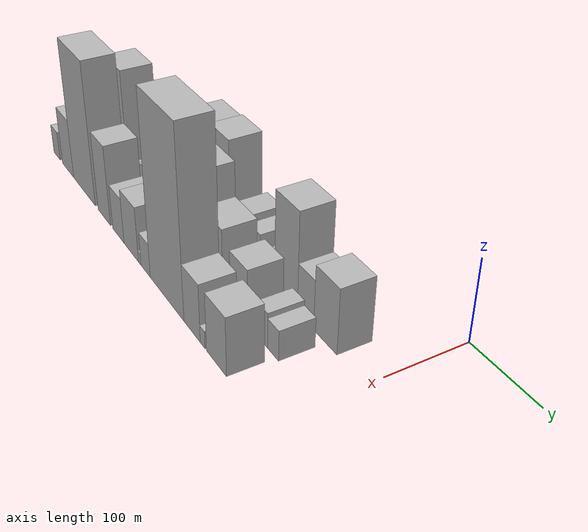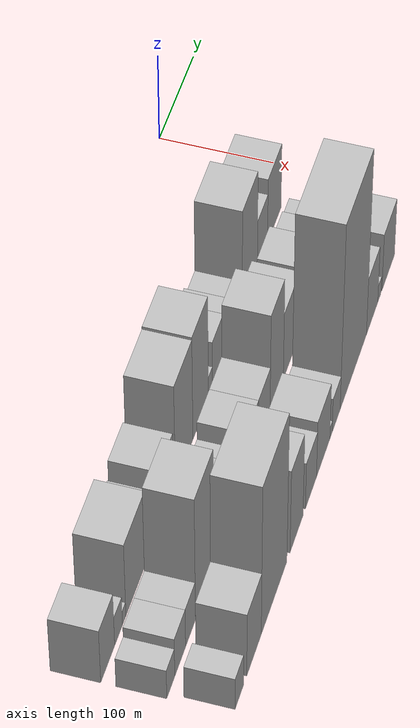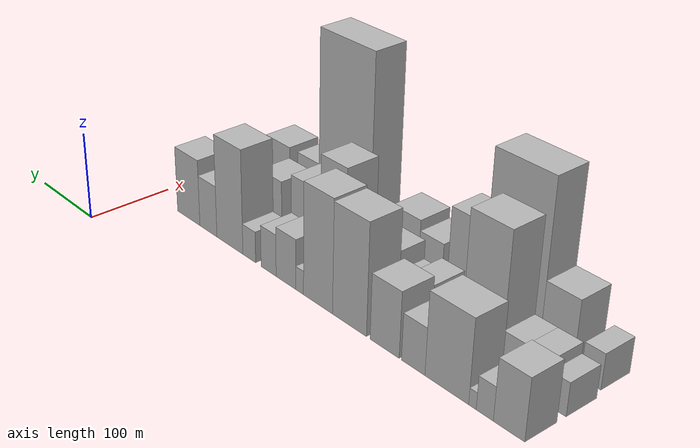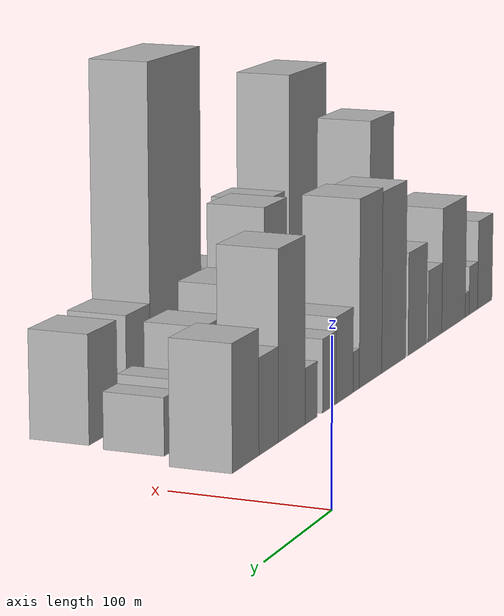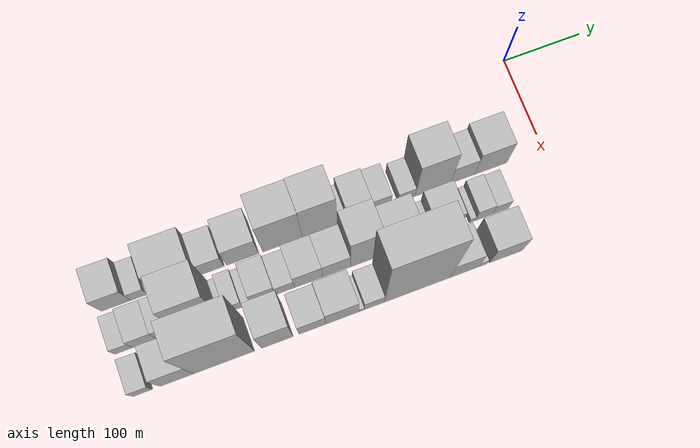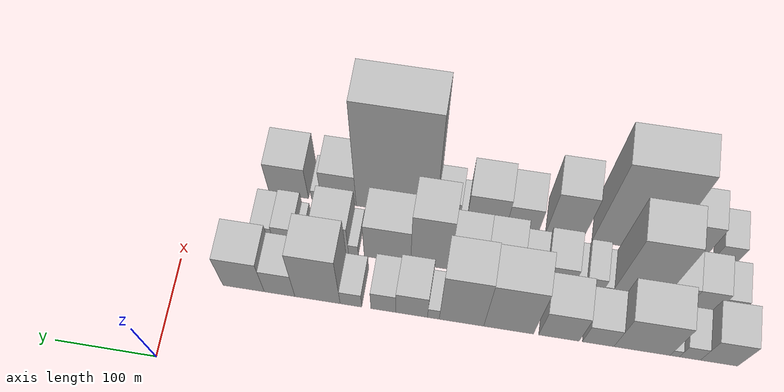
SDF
<sdf version="1.6">
 <world name="default">
  <model name="building_1">
   <static>1</static>
   <pose>100.0000 -530.3338 0 0.000000 0.000000 0.000000</pose>
   <link name="link">
    <pose>0 0 33.00 0 0 0</pose>
    <collision name="collision"><geometry><box><size>40.0000 35.3325 66.0000</size></box></geometry></collision>
    <visual name="visual">
     <cast_shadows>0</cast_shadows>
     <geometry><box><size>40.0000 35.3325 66.0000</size></box></geometry>
     <material>
      <script>
       <uri>model://HANNAS_wall/materials/scripts</uri>
       <uri>model://HANNAS_wall/materials/textures</uri>
       <name>vrc/HANNAS_wall</name>
      </script>
     </material>
    </visual>
   </link>
  </model>
  <model name="building_2">
   <static>1</static>
   <pose>100.0000 -502.6981 0 0.000000 0.000000 0.000000</pose>
   <link name="link">
    <pose>0 0 18.00 0 0 0</pose>
    <collision name="collision"><geometry><box><size>40.0000 19.9389 36.0000</size></box></geometry></collision>
    <visual name="visual">
     <cast_shadows>0</cast_shadows>
     <geometry><box><size>40.0000 19.9389 36.0000</size></box></geometry>
     <material>
      <script>
       <uri>model://HANNAS_wall/materials/scripts</uri>
       <uri>model://HANNAS_wall/materials/textures</uri>
       <name>vrc/HANNAS_wall</name>
      </script>
     </material>
    </visual>
   </link>
  </model>
  <model name="building_3">
   <static>1</static>
   <pose>100.0000 -488.2948 0 0.000000 0.000000 0.000000</pose>
   <link name="link">
    <pose>0 0 9.00 0 0 0</pose>
    <collision name="collision"><geometry><box><size>40.0000 8.8676 18.0000</size></box></geometry></collision>
    <visual name="visual">
     <cast_shadows>0</cast_shadows>
     <geometry><box><size>40.0000 8.8676 18.0000</size></box></geometry>
     <material>
      <script>
       <uri>model://HANNAS_wall/materials/scripts</uri>
       <uri>model://HANNAS_wall/materials/textures</uri>
       <name>vrc/HANNAS_wall</name>
      </script>
     </material>
    </visual>
   </link>
  </model>
  <model name="building_4">
   <static>1</static>
   <pose>100.0000 -457.0138 0 0.000000 0.000000 0.000000</pose>
   <link name="link">
    <pose>0 0 45.00 0 0 0</pose>
    <collision name="collision"><geometry><box><size>40.0000 53.6944 90.0000</size></box></geometry></collision>
    <visual name="visual">
     <cast_shadows>0</cast_shadows>
     <geometry><box><size>40.0000 53.6944 90.0000</size></box></geometry>
     <material>
      <script>
       <uri>model://HANNAS_wall/materials/scripts</uri>
       <uri>model://HANNAS_wall/materials/textures</uri>
       <name>vrc/HANNAS_wall</name>
      </script>
     </material>
    </visual>
   </link>
  </model>
  <model name="building_5">
   <static>1</static>
   <pose>100.0000 -415.0397 0 0.000000 0.000000 0.000000</pose>
   <link name="link">
    <pose>0 0 25.50 0 0 0</pose>
    <collision name="collision"><geometry><box><size>40.0000 30.2539 51.0000</size></box></geometry></collision>
    <visual name="visual">
     <cast_shadows>0</cast_shadows>
     <geometry><box><size>40.0000 30.2539 51.0000</size></box></geometry>
     <material>
      <script>
       <uri>model://HANNAS_wall/materials/scripts</uri>
       <uri>model://HANNAS_wall/materials/textures</uri>
       <name>vrc/HANNAS_wall</name>
      </script>
     </material>
    </visual>
   </link>
  </model>
  <model name="building_6">
   <static>1</static>
   <pose>100.0000 -377.3122 0 0.000000 0.000000 0.000000</pose>
   <link name="link">
    <pose>0 0 36.00 0 0 0</pose>
    <collision name="collision"><geometry><box><size>40.0000 39.2010 72.0000</size></box></geometry></collision>
    <visual name="visual">
     <cast_shadows>0</cast_shadows>
     <geometry><box><size>40.0000 39.2010 72.0000</size></box></geometry>
     <material>
      <script>
       <uri>model://HANNAS_wall/materials/scripts</uri>
       <uri>model://HANNAS_wall/materials/textures</uri>
       <name>vrc/HANNAS_wall</name>
      </script>
     </material>
    </visual>
   </link>
  </model>
  <model name="building_7">
   <static>1</static>
   <pose>100.0000 -328.5585 0 0.000000 0.000000 0.000000</pose>
   <link name="link">
    <pose>0 0 61.50 0 0 0</pose>
    <collision name="collision"><geometry><box><size>40.0000 48.3065 123.0000</size></box></geometry></collision>
    <visual name="visual">
     <cast_shadows>0</cast_shadows>
     <geometry><box><size>40.0000 48.3065 123.0000</size></box></geometry>
     <material>
      <script>
       <uri>model://HANNAS_wall/materials/scripts</uri>
       <uri>model://HANNAS_wall/materials/textures</uri>
       <name>vrc/HANNAS_wall</name>
      </script>
     </material>
    </visual>
   </link>
  </model>
  <model name="building_8">
   <static>1</static>
   <pose>100.0000 -282.7142 0 0.000000 0.000000 0.000000</pose>
   <link name="link">
    <pose>0 0 63.00 0 0 0</pose>
    <collision name="collision"><geometry><box><size>40.0000 43.3821 126.0000</size></box></geometry></collision>
    <visual name="visual">
     <cast_shadows>0</cast_shadows>
     <geometry><box><size>40.0000 43.3821 126.0000</size></box></geometry>
     <material>
      <script>
       <uri>model://HANNAS_wall/materials/scripts</uri>
       <uri>model://HANNAS_wall/materials/textures</uri>
       <name>vrc/HANNAS_wall</name>
      </script>
     </material>
    </visual>
   </link>
  </model>
  <model name="building_9">
   <static>1</static>
   <pose>100.0000 -255.2567 0 0.000000 0.000000 0.000000</pose>
   <link name="link">
    <pose>0 0 13.50 0 0 0</pose>
    <collision name="collision"><geometry><box><size>40.0000 11.5329 27.0000</size></box></geometry></collision>
    <visual name="visual">
     <cast_shadows>0</cast_shadows>
     <geometry><box><size>40.0000 11.5329 27.0000</size></box></geometry>
     <material>
      <script>
       <uri>model://HANNAS_wall/materials/scripts</uri>
       <uri>model://HANNAS_wall/materials/textures</uri>
       <name>vrc/HANNAS_wall</name>
      </script>
     </material>
    </visual>
   </link>
  </model>
  <model name="building_10">
   <static>1</static>
   <pose>100.0000 -233.8581 0 0.000000 0.000000 0.000000</pose>
   <link name="link">
    <pose>0 0 28.50 0 0 0</pose>
    <collision name="collision"><geometry><box><size>40.0000 31.2644 57.0000</size></box></geometry></collision>
    <visual name="visual">
     <cast_shadows>0</cast_shadows>
     <geometry><box><size>40.0000 31.2644 57.0000</size></box></geometry>
     <material>
      <script>
       <uri>model://HANNAS_wall/materials/scripts</uri>
       <uri>model://HANNAS_wall/materials/textures</uri>
       <name>vrc/HANNAS_wall</name>
      </script>
     </material>
    </visual>
   </link>
  </model>
  <model name="building_11">
   <static>1</static>
   <pose>100.0000 -206.1032 0 0.000000 0.000000 0.000000</pose>
   <link name="link">
    <pose>0 0 24.00 0 0 0</pose>
    <collision name="collision"><geometry><box><size>40.0000 24.2454 48.0000</size></box></geometry></collision>
    <visual name="visual">
     <cast_shadows>0</cast_shadows>
     <geometry><box><size>40.0000 24.2454 48.0000</size></box></geometry>
     <material>
      <script>
       <uri>model://HANNAS_wall/materials/scripts</uri>
       <uri>model://HANNAS_wall/materials/textures</uri>
       <name>vrc/HANNAS_wall</name>
      </script>
     </material>
    </visual>
   </link>
  </model>
  <model name="building_12">
   <static>1</static>
   <pose>100.0000 -174.3278 0 0.000000 0.000000 0.000000</pose>
   <link name="link">
    <pose>0 0 18.00 0 0 0</pose>
    <collision name="collision"><geometry><box><size>40.0000 21.3055 36.0000</size></box></geometry></collision>
    <visual name="visual">
     <cast_shadows>0</cast_shadows>
     <geometry><box><size>40.0000 21.3055 36.0000</size></box></geometry>
     <material>
      <script>
       <uri>model://HANNAS_wall/materials/scripts</uri>
       <uri>model://HANNAS_wall/materials/textures</uri>
       <name>vrc/HANNAS_wall</name>
      </script>
     </material>
    </visual>
   </link>
  </model>
  <model name="building_13">
   <static>1</static>
   <pose>100.0000 -141.2333 0 0.000000 0.000000 0.000000</pose>
   <link name="link">
    <pose>0 0 60.00 0 0 0</pose>
    <collision name="collision"><geometry><box><size>40.0000 44.8834 120.0000</size></box></geometry></collision>
    <visual name="visual">
     <cast_shadows>0</cast_shadows>
     <geometry><box><size>40.0000 44.8834 120.0000</size></box></geometry>
     <material>
      <script>
       <uri>model://HANNAS_wall/materials/scripts</uri>
       <uri>model://HANNAS_wall/materials/textures</uri>
       <name>vrc/HANNAS_wall</name>
      </script>
     </material>
    </visual>
   </link>
  </model>
  <model name="building_14">
   <static>1</static>
   <pose>100.0000 -103.5274 0 0.000000 0.000000 0.000000</pose>
   <link name="link">
    <pose>0 0 30.00 0 0 0</pose>
    <collision name="collision"><geometry><box><size>40.0000 30.5285 60.0000</size></box></geometry></collision>
    <visual name="visual">
     <cast_shadows>0</cast_shadows>
     <geometry><box><size>40.0000 30.5285 60.0000</size></box></geometry>
     <material>
      <script>
       <uri>model://HANNAS_wall/materials/scripts</uri>
       <uri>model://HANNAS_wall/materials/textures</uri>
       <name>vrc/HANNAS_wall</name>
      </script>
     </material>
    </visual>
   </link>
  </model>
  <model name="building_15">
   <static>1</static>
   <pose>100.0000 -67.6410 0 0.000000 0.000000 0.000000</pose>
   <link name="link">
    <pose>0 0 39.00 0 0 0</pose>
    <collision name="collision"><geometry><box><size>40.0000 41.2443 78.0000</size></box></geometry></collision>
    <visual name="visual">
     <cast_shadows>0</cast_shadows>
     <geometry><box><size>40.0000 41.2443 78.0000</size></box></geometry>
     <material>
      <script>
       <uri>model://HANNAS_wall/materials/scripts</uri>
       <uri>model://HANNAS_wall/materials/textures</uri>
       <name>vrc/HANNAS_wall</name>
      </script>
     </material>
    </visual>
   </link>
  </model>
  <model name="building_31">
   <static>1</static>
   <pose>152.0000 -537.5515 0 0.000000 0.000000 0.000000</pose>
   <link name="link">
    <pose>0 0 18.00 0 0 0</pose>
    <collision name="collision"><geometry><box><size>40.0000 20.8969 36.0000</size></box></geometry></collision>
    <visual name="visual">
     <cast_shadows>0</cast_shadows>
     <geometry><box><size>40.0000 20.8969 36.0000</size></box></geometry>
     <material>
      <script>
       <uri>model://HANNAS_wall/materials/scripts</uri>
       <uri>model://HANNAS_wall/materials/textures</uri>
       <name>vrc/HANNAS_wall</name>
      </script>
     </material>
    </visual>
   </link>
  </model>
  <model name="building_32">
   <static>1</static>
   <pose>152.0000 -512.8496 0 0.000000 0.000000 0.000000</pose>
   <link name="link">
    <pose>0 0 24.00 0 0 0</pose>
    <collision name="collision"><geometry><box><size>40.0000 28.5069 48.0000</size></box></geometry></collision>
    <visual name="visual">
     <cast_shadows>0</cast_shadows>
     <geometry><box><size>40.0000 28.5069 48.0000</size></box></geometry>
     <material>
      <script>
       <uri>model://HANNAS_wall/materials/scripts</uri>
       <uri>model://HANNAS_wall/materials/textures</uri>
       <name>vrc/HANNAS_wall</name>
      </script>
     </material>
    </visual>
   </link>
  </model>
  <model name="building_33">
   <static>1</static>
   <pose>152.0000 -485.3992 0 0.000000 0.000000 0.000000</pose>
   <link name="link">
    <pose>0 0 24.00 0 0 0</pose>
    <collision name="collision"><geometry><box><size>40.0000 26.3939 48.0000</size></box></geometry></collision>
    <visual name="visual">
     <cast_shadows>0</cast_shadows>
     <geometry><box><size>40.0000 26.3939 48.0000</size></box></geometry>
     <material>
      <script>
       <uri>model://HANNAS_wall/materials/scripts</uri>
       <uri>model://HANNAS_wall/materials/textures</uri>
       <name>vrc/HANNAS_wall</name>
      </script>
     </material>
    </visual>
   </link>
  </model>
  <model name="building_34">
   <static>1</static>
   <pose>152.0000 -447.6264 0 0.000000 0.000000 0.000000</pose>
   <link name="link">
    <pose>0 0 75.00 0 0 0</pose>
    <collision name="collision"><geometry><box><size>40.0000 49.1517 150.0000</size></box></geometry></collision>
    <visual name="visual">
     <cast_shadows>0</cast_shadows>
     <geometry><box><size>40.0000 49.1517 150.0000</size></box></geometry>
     <material>
      <script>
       <uri>model://HANNAS_wall/materials/scripts</uri>
       <uri>model://HANNAS_wall/materials/textures</uri>
       <name>vrc/HANNAS_wall</name>
      </script>
     </material>
    </visual>
   </link>
  </model>
  <model name="building_35">
   <static>1</static>
   <pose>152.0000 -418.7044 0 0.000000 0.000000 0.000000</pose>
   <link name="link">
    <pose>0 0 9.00 0 0 0</pose>
    <collision name="collision"><geometry><box><size>40.0000 8.6922 18.0000</size></box></geometry></collision>
    <visual name="visual">
     <cast_shadows>0</cast_shadows>
     <geometry><box><size>40.0000 8.6922 18.0000</size></box></geometry>
     <material>
      <script>
       <uri>model://HANNAS_wall/materials/scripts</uri>
       <uri>model://HANNAS_wall/materials/textures</uri>
       <name>vrc/HANNAS_wall</name>
      </script>
     </material>
    </visual>
   </link>
  </model>
  <model name="building_36">
   <static>1</static>
   <pose>152.0000 -404.8493 0 0.000000 0.000000 0.000000</pose>
   <link name="link">
    <pose>0 0 18.00 0 0 0</pose>
    <collision name="collision"><geometry><box><size>40.0000 19.0181 36.0000</size></box></geometry></collision>
    <visual name="visual">
     <cast_shadows>0</cast_shadows>
     <geometry><box><size>40.0000 19.0181 36.0000</size></box></geometry>
     <material>
      <script>
       <uri>model://HANNAS_wall/materials/scripts</uri>
       <uri>model://HANNAS_wall/materials/textures</uri>
       <name>vrc/HANNAS_wall</name>
      </script>
     </material>
    </visual>
   </link>
  </model>
  <model name="building_37">
   <static>1</static>
   <pose>152.0000 -390.2916 0 0.000000 0.000000 0.000000</pose>
   <link name="link">
    <pose>0 0 12.00 0 0 0</pose>
    <collision name="collision"><geometry><box><size>40.0000 10.0972 24.0000</size></box></geometry></collision>
    <visual name="visual">
     <cast_shadows>0</cast_shadows>
     <geometry><box><size>40.0000 10.0972 24.0000</size></box></geometry>
     <material>
      <script>
       <uri>model://HANNAS_wall/materials/scripts</uri>
       <uri>model://HANNAS_wall/materials/textures</uri>
       <name>vrc/HANNAS_wall</name>
      </script>
     </material>
    </visual>
   </link>
  </model>
  <model name="building_38">
   <static>1</static>
   <pose>152.0000 -370.4043 0 0.000000 0.000000 0.000000</pose>
   <link name="link">
    <pose>0 0 25.50 0 0 0</pose>
    <collision name="collision"><geometry><box><size>40.0000 29.6774 51.0000</size></box></geometry></collision>
    <visual name="visual">
     <cast_shadows>0</cast_shadows>
     <geometry><box><size>40.0000 29.6774 51.0000</size></box></geometry>
     <material>
      <script>
       <uri>model://HANNAS_wall/materials/scripts</uri>
       <uri>model://HANNAS_wall/materials/textures</uri>
       <name>vrc/HANNAS_wall</name>
      </script>
     </material>
    </visual>
   </link>
  </model>
  <model name="building_39">
   <static>1</static>
   <pose>152.0000 -344.0261 0 0.000000 0.000000 0.000000</pose>
   <link name="link">
    <pose>0 0 19.50 0 0 0</pose>
    <collision name="collision"><geometry><box><size>40.0000 23.0791 39.0000</size></box></geometry></collision>
    <visual name="visual">
     <cast_shadows>0</cast_shadows>
     <geometry><box><size>40.0000 23.0791 39.0000</size></box></geometry>
     <material>
      <script>
       <uri>model://HANNAS_wall/materials/scripts</uri>
       <uri>model://HANNAS_wall/materials/textures</uri>
       <name>vrc/HANNAS_wall</name>
      </script>
     </material>
    </visual>
   </link>
  </model>
  <model name="building_40">
   <static>1</static>
   <pose>152.0000 -315.2339 0 0.000000 0.000000 0.000000</pose>
   <link name="link">
    <pose>0 0 30.00 0 0 0</pose>
    <collision name="collision"><geometry><box><size>40.0000 34.5054 60.0000</size></box></geometry></collision>
    <visual name="visual">
     <cast_shadows>0</cast_shadows>
     <geometry><box><size>40.0000 34.5054 60.0000</size></box></geometry>
     <material>
      <script>
       <uri>model://HANNAS_wall/materials/scripts</uri>
       <uri>model://HANNAS_wall/materials/textures</uri>
       <name>vrc/HANNAS_wall</name>
      </script>
     </material>
    </visual>
   </link>
  </model>
  <model name="building_41">
   <static>1</static>
   <pose>152.0000 -280.9853 0 0.000000 0.000000 0.000000</pose>
   <link name="link">
    <pose>0 0 30.00 0 0 0</pose>
    <collision name="collision"><geometry><box><size>40.0000 33.9917 60.0000</size></box></geometry></collision>
    <visual name="visual">
     <cast_shadows>0</cast_shadows>
     <geometry><box><size>40.0000 33.9917 60.0000</size></box></geometry>
     <material>
      <script>
       <uri>model://HANNAS_wall/materials/scripts</uri>
       <uri>model://HANNAS_wall/materials/textures</uri>
       <name>vrc/HANNAS_wall</name>
      </script>
     </material>
    </visual>
   </link>
  </model>
  <model name="building_42">
   <static>1</static>
   <pose>152.0000 -244.4302 0 0.000000 0.000000 0.000000</pose>
   <link name="link">
    <pose>0 0 61.50 0 0 0</pose>
    <collision name="collision"><geometry><box><size>40.0000 39.1185 123.0000</size></box></geometry></collision>
    <visual name="visual">
     <cast_shadows>0</cast_shadows>
     <geometry><box><size>40.0000 39.1185 123.0000</size></box></geometry>
     <material>
      <script>
       <uri>model://HANNAS_wall/materials/scripts</uri>
       <uri>model://HANNAS_wall/materials/textures</uri>
       <name>vrc/HANNAS_wall</name>
      </script>
     </material>
    </visual>
   </link>
  </model>
  <model name="building_43">
   <static>1</static>
   <pose>152.0000 -201.6564 0 0.000000 0.000000 0.000000</pose>
   <link name="link">
    <pose>0 0 40.50 0 0 0</pose>
    <collision name="collision"><geometry><box><size>40.0000 46.4292 81.0000</size></box></geometry></collision>
    <visual name="visual">
     <cast_shadows>0</cast_shadows>
     <geometry><box><size>40.0000 46.4292 81.0000</size></box></geometry>
     <material>
      <script>
       <uri>model://HANNAS_wall/materials/scripts</uri>
       <uri>model://HANNAS_wall/materials/textures</uri>
       <name>vrc/HANNAS_wall</name>
      </script>
     </material>
    </visual>
   </link>
  </model>
  <model name="building_44">
   <static>1</static>
   <pose>152.0000 -167.5456 0 0.000000 0.000000 0.000000</pose>
   <link name="link">
    <pose>0 0 12.00 0 0 0</pose>
    <collision name="collision"><geometry><box><size>40.0000 9.7924 24.0000</size></box></geometry></collision>
    <visual name="visual">
     <cast_shadows>0</cast_shadows>
     <geometry><box><size>40.0000 9.7924 24.0000</size></box></geometry>
     <material>
      <script>
       <uri>model://HANNAS_wall/materials/scripts</uri>
       <uri>model://HANNAS_wall/materials/textures</uri>
       <name>vrc/HANNAS_wall</name>
      </script>
     </material>
    </visual>
   </link>
  </model>
  <model name="building_45">
   <static>1</static>
   <pose>152.0000 -144.4393 0 0.000000 0.000000 0.000000</pose>
   <link name="link">
    <pose>0 0 33.00 0 0 0</pose>
    <collision name="collision"><geometry><box><size>40.0000 36.4202 66.0000</size></box></geometry></collision>
    <visual name="visual">
     <cast_shadows>0</cast_shadows>
     <geometry><box><size>40.0000 36.4202 66.0000</size></box></geometry>
     <material>
      <script>
       <uri>model://HANNAS_wall/materials/scripts</uri>
       <uri>model://HANNAS_wall/materials/textures</uri>
       <name>vrc/HANNAS_wall</name>
      </script>
     </material>
    </visual>
   </link>
  </model>
  <model name="building_46">
   <static>1</static>
   <pose>152.0000 -112.5041 0 0.000000 0.000000 0.000000</pose>
   <link name="link">
    <pose>0 0 9.00 0 0 0</pose>
    <collision name="collision"><geometry><box><size>40.0000 7.4502 18.0000</size></box></geometry></collision>
    <visual name="visual">
     <cast_shadows>0</cast_shadows>
     <geometry><box><size>40.0000 7.4502 18.0000</size></box></geometry>
     <material>
      <script>
       <uri>model://HANNAS_wall/materials/scripts</uri>
       <uri>model://HANNAS_wall/materials/textures</uri>
       <name>vrc/HANNAS_wall</name>
      </script>
     </material>
    </visual>
   </link>
  </model>
  <model name="building_47">
   <static>1</static>
   <pose>152.0000 -97.9111 0 0.000000 0.000000 0.000000</pose>
   <link name="link">
    <pose>0 0 21.00 0 0 0</pose>
    <collision name="collision"><geometry><box><size>40.0000 21.7357 42.0000</size></box></geometry></collision>
    <visual name="visual">
     <cast_shadows>0</cast_shadows>
     <geometry><box><size>40.0000 21.7357 42.0000</size></box></geometry>
     <material>
      <script>
       <uri>model://HANNAS_wall/materials/scripts</uri>
       <uri>model://HANNAS_wall/materials/textures</uri>
       <name>vrc/HANNAS_wall</name>
      </script>
     </material>
    </visual>
   </link>
  </model>
  <model name="building_48">
   <static>1</static>
   <pose>152.0000 -76.6915 0 0.000000 0.000000 0.000000</pose>
   <link name="link">
    <pose>0 0 18.00 0 0 0</pose>
    <collision name="collision"><geometry><box><size>40.0000 20.7035 36.0000</size></box></geometry></collision>
    <visual name="visual">
     <cast_shadows>0</cast_shadows>
     <geometry><box><size>40.0000 20.7035 36.0000</size></box></geometry>
     <material>
      <script>
       <uri>model://HANNAS_wall/materials/scripts</uri>
       <uri>model://HANNAS_wall/materials/textures</uri>
       <name>vrc/HANNAS_wall</name>
      </script>
     </material>
    </visual>
   </link>
  </model>
  <model name="building_63">
   <static>1</static>
   <pose>204.0000 -531.6019 0 0.000000 0.000000 0.000000</pose>
   <link name="link">
    <pose>0 0 19.50 0 0 0</pose>
    <collision name="collision"><geometry><box><size>40.0000 22.7963 39.0000</size></box></geometry></collision>
    <visual name="visual">
     <cast_shadows>0</cast_shadows>
     <geometry><box><size>40.0000 22.7963 39.0000</size></box></geometry>
     <material>
      <script>
       <uri>model://HANNAS_wall/materials/scripts</uri>
       <uri>model://HANNAS_wall/materials/textures</uri>
       <name>vrc/HANNAS_wall</name>
      </script>
     </material>
    </visual>
   </link>
  </model>
  <model name="building_64">
   <static>1</static>
   <pose>204.0000 -491.3380 0 0.000000 0.000000 0.000000</pose>
   <link name="link">
    <pose>0 0 39.00 0 0 0</pose>
    <collision name="collision"><geometry><box><size>40.0000 39.7314 78.0000</size></box></geometry></collision>
    <visual name="visual">
     <cast_shadows>0</cast_shadows>
     <geometry><box><size>40.0000 39.7314 78.0000</size></box></geometry>
     <material>
      <script>
       <uri>model://HANNAS_wall/materials/scripts</uri>
       <uri>model://HANNAS_wall/materials/textures</uri>
       <name>vrc/HANNAS_wall</name>
      </script>
     </material>
    </visual>
   </link>
  </model>
  <model name="building_65">
   <static>1</static>
   <pose>204.0000 -435.4657 0 0.000000 0.000000 0.000000</pose>
   <link name="link">
    <pose>0 0 91.50 0 0 0</pose>
    <collision name="collision"><geometry><box><size>40.0000 72.0133 183.0000</size></box></geometry></collision>
    <visual name="visual">
     <cast_shadows>0</cast_shadows>
     <geometry><box><size>40.0000 72.0133 183.0000</size></box></geometry>
     <material>
      <script>
       <uri>model://HANNAS_wall/materials/scripts</uri>
       <uri>model://HANNAS_wall/materials/textures</uri>
       <name>vrc/HANNAS_wall</name>
      </script>
     </material>
    </visual>
   </link>
  </model>
  <model name="building_66">
   <static>1</static>
   <pose>204.0000 -371.6864 0 0.000000 0.000000 0.000000</pose>
   <link name="link">
    <pose>0 0 51.00 0 0 0</pose>
    <collision name="collision"><geometry><box><size>40.0000 37.5453 102.0000</size></box></geometry></collision>
    <visual name="visual">
     <cast_shadows>0</cast_shadows>
     <geometry><box><size>40.0000 37.5453 102.0000</size></box></geometry>
     <material>
      <script>
       <uri>model://HANNAS_wall/materials/scripts</uri>
       <uri>model://HANNAS_wall/materials/textures</uri>
       <name>vrc/HANNAS_wall</name>
      </script>
     </material>
    </visual>
   </link>
  </model>
  <model name="building_67">
   <static>1</static>
   <pose>204.0000 -329.6819 0 0.000000 0.000000 0.000000</pose>
   <link name="link">
    <pose>0 0 28.50 0 0 0</pose>
    <collision name="collision"><geometry><box><size>40.0000 32.4638 57.0000</size></box></geometry></collision>
    <visual name="visual">
     <cast_shadows>0</cast_shadows>
     <geometry><box><size>40.0000 32.4638 57.0000</size></box></geometry>
     <material>
      <script>
       <uri>model://HANNAS_wall/materials/scripts</uri>
       <uri>model://HANNAS_wall/materials/textures</uri>
       <name>vrc/HANNAS_wall</name>
      </script>
     </material>
    </visual>
   </link>
  </model>
  <model name="building_68">
   <static>1</static>
   <pose>204.0000 -293.4402 0 0.000000 0.000000 0.000000</pose>
   <link name="link">
    <pose>0 0 34.50 0 0 0</pose>
    <collision name="collision"><geometry><box><size>40.0000 40.0195 69.0000</size></box></geometry></collision>
    <visual name="visual">
     <cast_shadows>0</cast_shadows>
     <geometry><box><size>40.0000 40.0195 69.0000</size></box></geometry>
     <material>
      <script>
       <uri>model://HANNAS_wall/materials/scripts</uri>
       <uri>model://HANNAS_wall/materials/textures</uri>
       <name>vrc/HANNAS_wall</name>
      </script>
     </material>
    </visual>
   </link>
  </model>
  <model name="building_69">
   <static>1</static>
   <pose>204.0000 -270.0618 0 0.000000 0.000000 0.000000</pose>
   <link name="link">
    <pose>0 0 7.50 0 0 0</pose>
    <collision name="collision"><geometry><box><size>40.0000 6.7374 15.0000</size></box></geometry></collision>
    <visual name="visual">
     <cast_shadows>0</cast_shadows>
     <geometry><box><size>40.0000 6.7374 15.0000</size></box></geometry>
     <material>
      <script>
       <uri>model://HANNAS_wall/materials/scripts</uri>
       <uri>model://HANNAS_wall/materials/textures</uri>
       <name>vrc/HANNAS_wall</name>
      </script>
     </material>
    </visual>
   </link>
  </model>
  <model name="building_70">
   <static>1</static>
   <pose>204.0000 -254.5823 0 0.000000 0.000000 0.000000</pose>
   <link name="link">
    <pose>0 0 21.00 0 0 0</pose>
    <collision name="collision"><geometry><box><size>40.0000 24.2216 42.0000</size></box></geometry></collision>
    <visual name="visual">
     <cast_shadows>0</cast_shadows>
     <geometry><box><size>40.0000 24.2216 42.0000</size></box></geometry>
     <material>
      <script>
       <uri>model://HANNAS_wall/materials/scripts</uri>
       <uri>model://HANNAS_wall/materials/textures</uri>
       <name>vrc/HANNAS_wall</name>
      </script>
     </material>
    </visual>
   </link>
  </model>
  <model name="building_71">
   <static>1</static>
   <pose>204.0000 -201.8177 0 0.000000 0.000000 0.000000</pose>
   <link name="link">
    <pose>0 0 111.00 0 0 0</pose>
    <collision name="collision"><geometry><box><size>40.0000 81.3077 222.0000</size></box></geometry></collision>
    <visual name="visual">
     <cast_shadows>0</cast_shadows>
     <geometry><box><size>40.0000 81.3077 222.0000</size></box></geometry>
     <material>
      <script>
       <uri>model://HANNAS_wall/materials/scripts</uri>
       <uri>model://HANNAS_wall/materials/textures</uri>
       <name>vrc/HANNAS_wall</name>
      </script>
     </material>
    </visual>
   </link>
  </model>
  <model name="building_72">
   <static>1</static>
   <pose>204.0000 -143.2729 0 0.000000 0.000000 0.000000</pose>
   <link name="link">
    <pose>0 0 34.50 0 0 0</pose>
    <collision name="collision"><geometry><box><size>40.0000 35.7818 69.0000</size></box></geometry></collision>
    <visual name="visual">
     <cast_shadows>0</cast_shadows>
     <geometry><box><size>40.0000 35.7818 69.0000</size></box></geometry>
     <material>
      <script>
       <uri>model://HANNAS_wall/materials/scripts</uri>
       <uri>model://HANNAS_wall/materials/textures</uri>
       <name>vrc/HANNAS_wall</name>
      </script>
     </material>
    </visual>
   </link>
  </model>
  <model name="building_73">
   <static>1</static>
   <pose>204.0000 -120.2430 0 0.000000 0.000000 0.000000</pose>
   <link name="link">
    <pose>0 0 10.50 0 0 0</pose>
    <collision name="collision"><geometry><box><size>40.0000 10.2780 21.0000</size></box></geometry></collision>
    <visual name="visual">
     <cast_shadows>0</cast_shadows>
     <geometry><box><size>40.0000 10.2780 21.0000</size></box></geometry>
     <material>
      <script>
       <uri>model://HANNAS_wall/materials/scripts</uri>
       <uri>model://HANNAS_wall/materials/textures</uri>
       <name>vrc/HANNAS_wall</name>
      </script>
     </material>
    </visual>
   </link>
  </model>
  <model name="building_74">
   <static>1</static>
   <pose>204.0000 -91.7794 0 0.000000 0.000000 0.000000</pose>
   <link name="link">
    <pose>0 0 34.50 0 0 0</pose>
    <collision name="collision"><geometry><box><size>40.0000 40.6491 69.0000</size></box></geometry></collision>
    <visual name="visual">
     <cast_shadows>0</cast_shadows>
     <geometry><box><size>40.0000 40.6491 69.0000</size></box></geometry>
     <material>
      <script>
       <uri>model://HANNAS_wall/materials/scripts</uri>
       <uri>model://HANNAS_wall/materials/textures</uri>
       <name>vrc/HANNAS_wall</name>
      </script>
     </material>
    </visual>
   </link>
  </model>
 </world>
</sdf>
